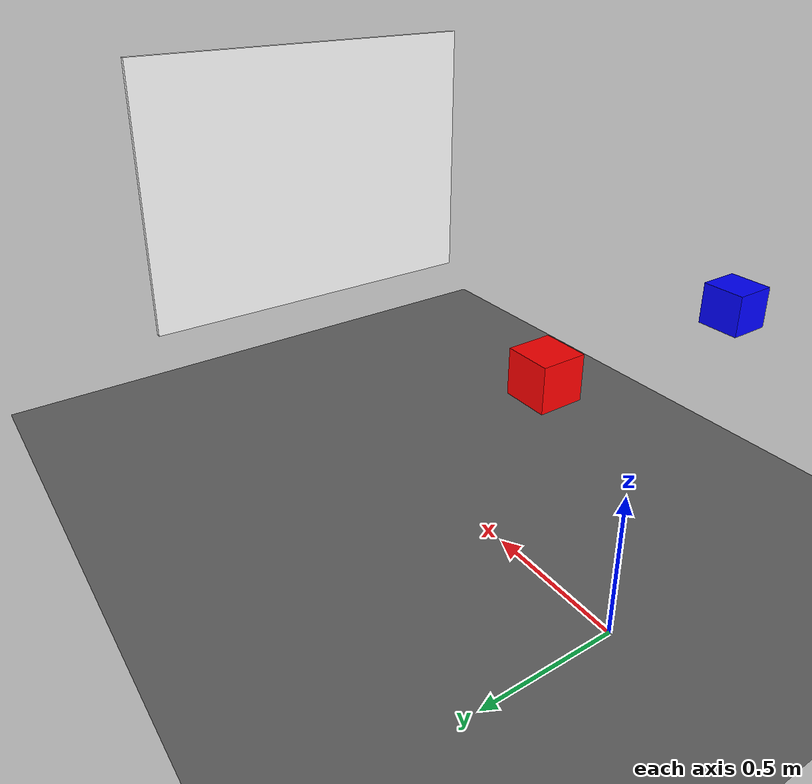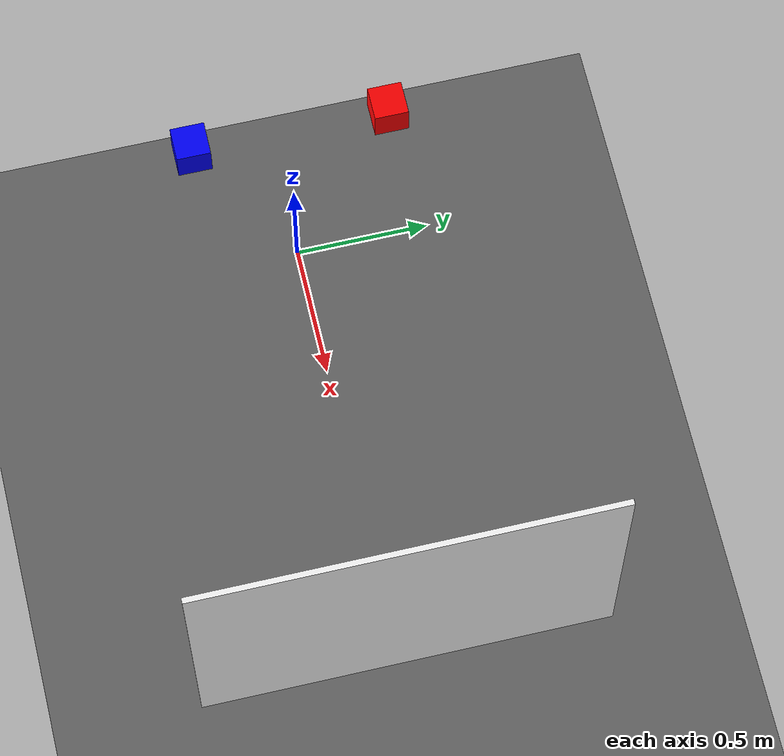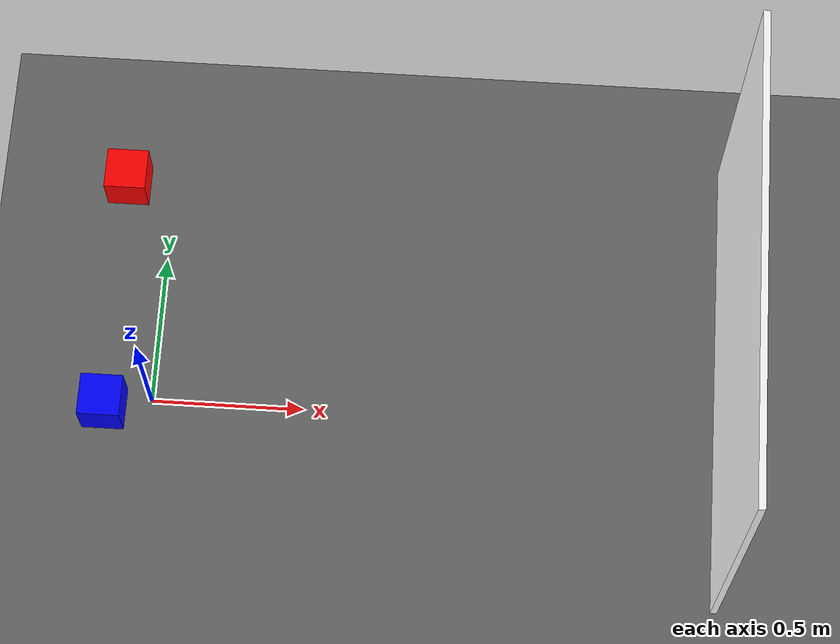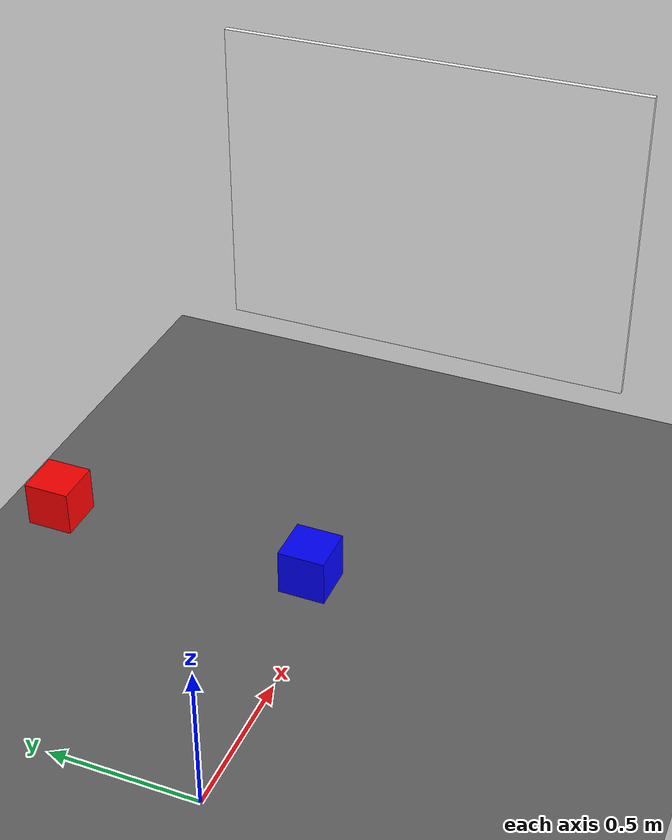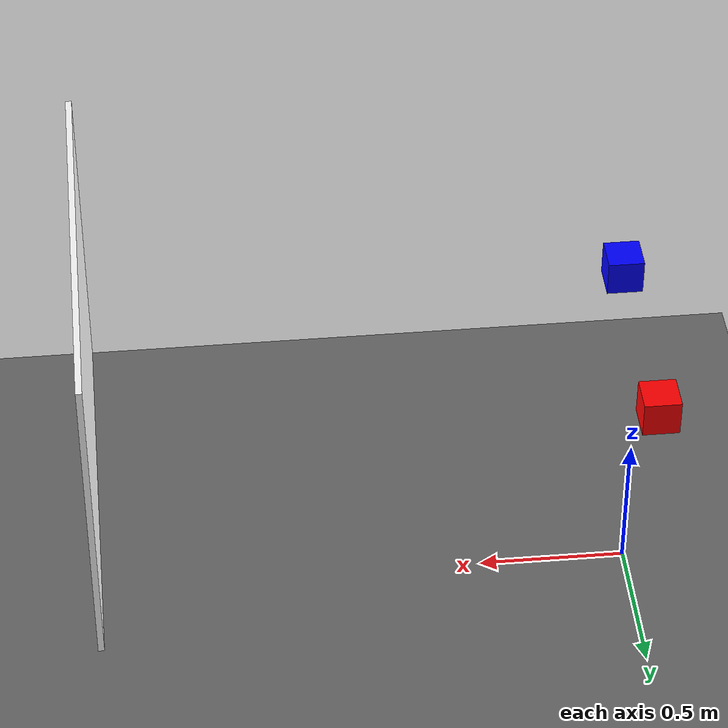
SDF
<?xml version="1.0" ?>
<sdf version="1.8">
  <world name="dynamic_checkerboard_res320x240">

    <plugin
      filename="ignition-gazebo-physics-system"
      name="ignition::gazebo::systems::Physics">
    </plugin>

    <plugin
      filename="ignition-gazebo-scene-broadcaster-system"
      name="ignition::gazebo::systems::SceneBroadcaster">
    </plugin>

    <plugin
      filename="ignition-gazebo-sensors-system"
      name="ignition::gazebo::systems::Sensors">
      <render_engine>ogre2</render_engine>
    </plugin>

    <light name="sun" type="directional">
      <pose>0 0 10 0 0 0</pose>
      <diffuse>1 1 1 1</diffuse>
      <specular>0.5 0.5 0.5 1</specular>
      <direction>-0.5 0.1 -1</direction>
    </light>

    <model name="ground_plane">
      <static>true</static>
      <link name="ground_link">
        <collision name="ground_collision">
          <geometry>
            <plane>
              <normal>0 0 1</normal>
              <size>10 10</size>
            </plane>
          </geometry>
        </collision>
        <visual name="ground_visual">
          <geometry>
            <plane>
              <normal>0 0 1</normal>
              <size>10 10</size>
            </plane>
          </geometry>
          <material>
            <ambient>0.4 0.4 0.4 1</ambient>
            <diffuse>0.4 0.4 0.4 1</diffuse>
          </material>
        </visual>
      </link>
    </model>

    <!-- Calibration target: erstmal nur weiße Platte -->
    <include>
      <uri>model://checkerboard_target</uri>
      <name>calibration_target</name>
      <pose>1.800 0.000 1.000 0.000 0.000 0.000000</pose>
    </include>

    <!-- Camera 1 -->
    <model name="camera_1">
      <static>true</static>
      <pose>0 -0.35 1.0 0 0 0</pose>
      <link name="camera_1_link">

        <visual name="camera_1_body">
          <geometry>
            <box>
              <size>0.12 0.12 0.12</size>
            </box>
          </geometry>
          <material>
            <ambient>0 0 1 1</ambient>
            <diffuse>0 0 1 1</diffuse>
          </material>
        </visual>

        <sensor name="camera_1_sensor" type="camera">
          <always_on>true</always_on>
          <update_rate>10</update_rate>
          <topic>/camera_1/image</topic>
          <visualize>true</visualize>
          <camera>
            <horizontal_fov>1.047</horizontal_fov>
            <image>
              <width>320</width>
              <height>240</height>
              <format>R8G8B8</format>
            </image>
            <clip>
              <near>0.1</near>
              <far>100</far>
            </clip>
          </camera>
        </sensor>

      </link>
    </model>

    <!-- Camera 2 -->
    <model name="camera_2">
      <static>true</static>
      <pose>0 0.35 1.0 0 0 0</pose>
      <link name="camera_2_link">

        <visual name="camera_2_body">
          <geometry>
            <box>
              <size>0.12 0.12 0.12</size>
            </box>
          </geometry>
          <material>
            <ambient>1 0 0 1</ambient>
            <diffuse>1 0 0 1</diffuse>
          </material>
        </visual>

        <sensor name="camera_2_sensor" type="camera">
          <always_on>true</always_on>
          <update_rate>10</update_rate>
          <topic>/camera_2/image</topic>
          <visualize>true</visualize>
          <camera>
            <horizontal_fov>1.047</horizontal_fov>
            <image>
              <width>320</width>
              <height>240</height>
              <format>R8G8B8</format>
            </image>
            <clip>
              <near>0.1</near>
              <far>100</far>
            </clip>
          </camera>
        </sensor>

      </link>
    </model>

    <plugin
      filename="ignition-gazebo-user-commands-system"
      name="ignition::gazebo::systems::UserCommands">
    </plugin>

  </world>
</sdf>

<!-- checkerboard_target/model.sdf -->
<sdf version="1.8">
  <model name="checkerboard_target">
    <static>true</static>

    <link name="target_link">
      <visual name="target_visual">
        <geometry>
          <box>
            <!-- thickness, width, height -->
            <size>0.02 1.44 1.08</size>
          </box>
        </geometry>

        <material>
          <ambient>1 1 1 1</ambient>
          <diffuse>1 1 1 1</diffuse>
          <specular>0.1 0.1 0.1 1</specular>
          <pbr>
            <metal>
              <albedo_map>file:///workspaces/project/src/calib_lab/models/checkerboard_target/materials/textures/checkerboard_10x7.png</albedo_map>
              <roughness>0.8</roughness>
              <metalness>0.0</metalness>
            </metal>
          </pbr>
        </material>
      </visual>

      <collision name="target_collision">
        <geometry>
          <box>
            <size>0.02 1.44 1.08</size>
          </box>
        </geometry>
      </collision>
    </link>
  </model>
</sdf>
